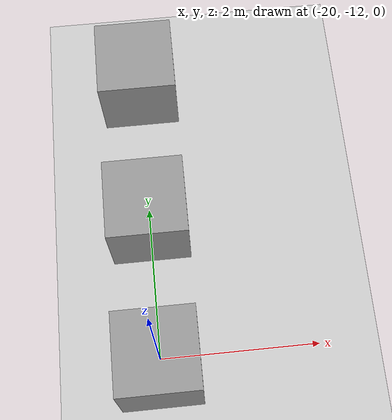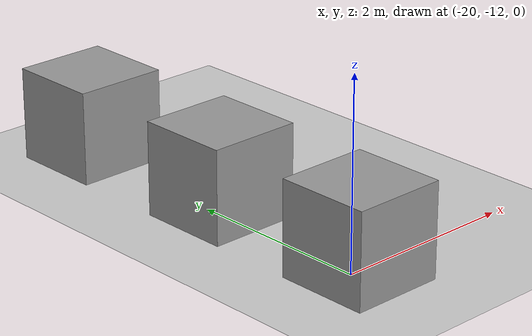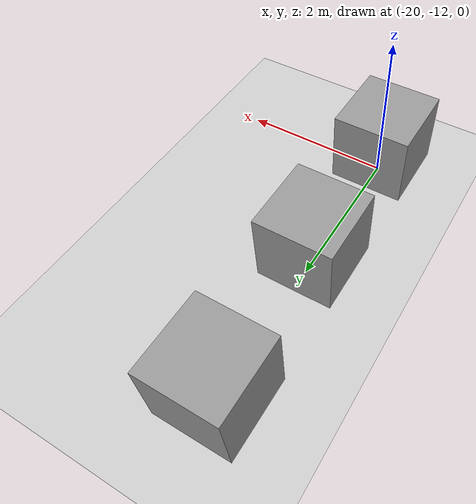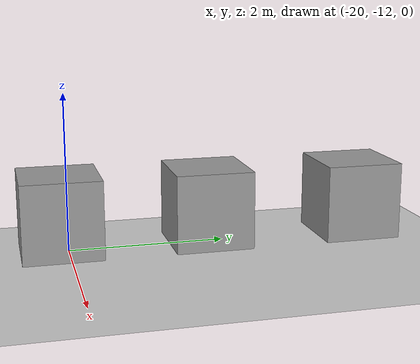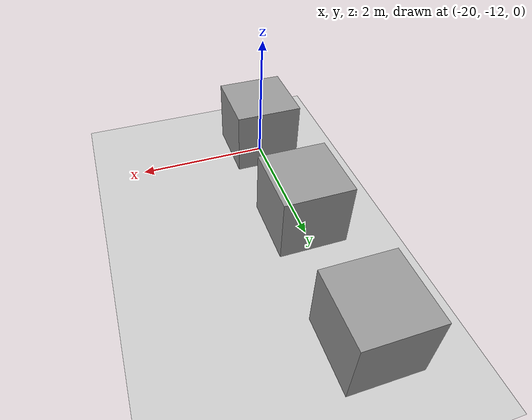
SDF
<sdf version="1.7">
 <world name="default">
  <model name="ground_plane">
   <static>1</static>
   <link name="link">
    <collision name="collision">
     <geometry><plane><normal>0 0 1</normal><size>100 100</size></plane></geometry>
     <surface>
      <contact><collide_bitmask>65535</collide_bitmask></contact>
      <friction><ode><mu>100</mu><mu2>50</mu2></ode></friction>
     </surface>
    </collision>
    <visual name="visual">
     <cast_shadows>0</cast_shadows>
     <geometry><plane><normal>0 0 1</normal><size>100 100</size></plane></geometry>
     <material>
      <script><uri>file://media/materials/scripts/gazebo.material</uri><name>Gazebo/Grey</name></script>
     </material>
    </visual>
   </link>
  </model>
  <model name="unit_box">
   <pose>-20 -10.2 0.5 0 -0 0</pose>
   <link name="link">
    <inertial>
     <mass>1</mass>
     <inertia>
      <ixx>0.166667</ixx>
      <ixy>0</ixy>
      <ixz>0</ixz>
      <iyy>0.166667</iyy>
      <iyz>0</iyz>
      <izz>0.166667</izz>
     </inertia>
    </inertial>
    <collision name="collision"><geometry><box><size>1 1 1</size></box></geometry></collision>
    <visual name="visual">
     <geometry><box><size>1 1 1</size></box></geometry>
     <material>
      <script><name>Gazebo/Grey</name><uri>file://media/materials/scripts/gazebo.material</uri></script>
     </material>
    </visual>
   </link>
  </model>
  <model name="unit_box_0">
   <pose>-20 -12.1 0.5 0 -0 0</pose>
   <link name="link">
    <inertial>
     <mass>1</mass>
     <inertia>
      <ixx>0.166667</ixx>
      <ixy>0</ixy>
      <ixz>0</ixz>
      <iyy>0.166667</iyy>
      <iyz>0</iyz>
      <izz>0.166667</izz>
     </inertia>
    </inertial>
    <collision name="collision"><geometry><box><size>1 1 1</size></box></geometry></collision>
    <visual name="visual">
     <geometry><box><size>1 1 1</size></box></geometry>
     <material>
      <script><name>Gazebo/Grey</name><uri>file://media/materials/scripts/gazebo.material</uri></script>
     </material>
    </visual>
   </link>
  </model>
  <model name="unit_box_1">
   <pose>-20 -8.2 0.5 0 -0 0</pose>
   <link name="link">
    <inertial>
     <mass>1</mass>
     <inertia>
      <ixx>0.166667</ixx>
      <ixy>0</ixy>
      <ixz>0</ixz>
      <iyy>0.166667</iyy>
      <iyz>0</iyz>
      <izz>0.166667</izz>
     </inertia>
    </inertial>
    <collision name="collision"><geometry><box><size>1 1 1</size></box></geometry></collision>
    <visual name="visual">
     <geometry><box><size>1 1 1</size></box></geometry>
     <material>
      <script><name>Gazebo/Grey</name><uri>file://media/materials/scripts/gazebo.material</uri></script>
     </material>
    </visual>
   </link>
  </model>
 </world>
</sdf>
